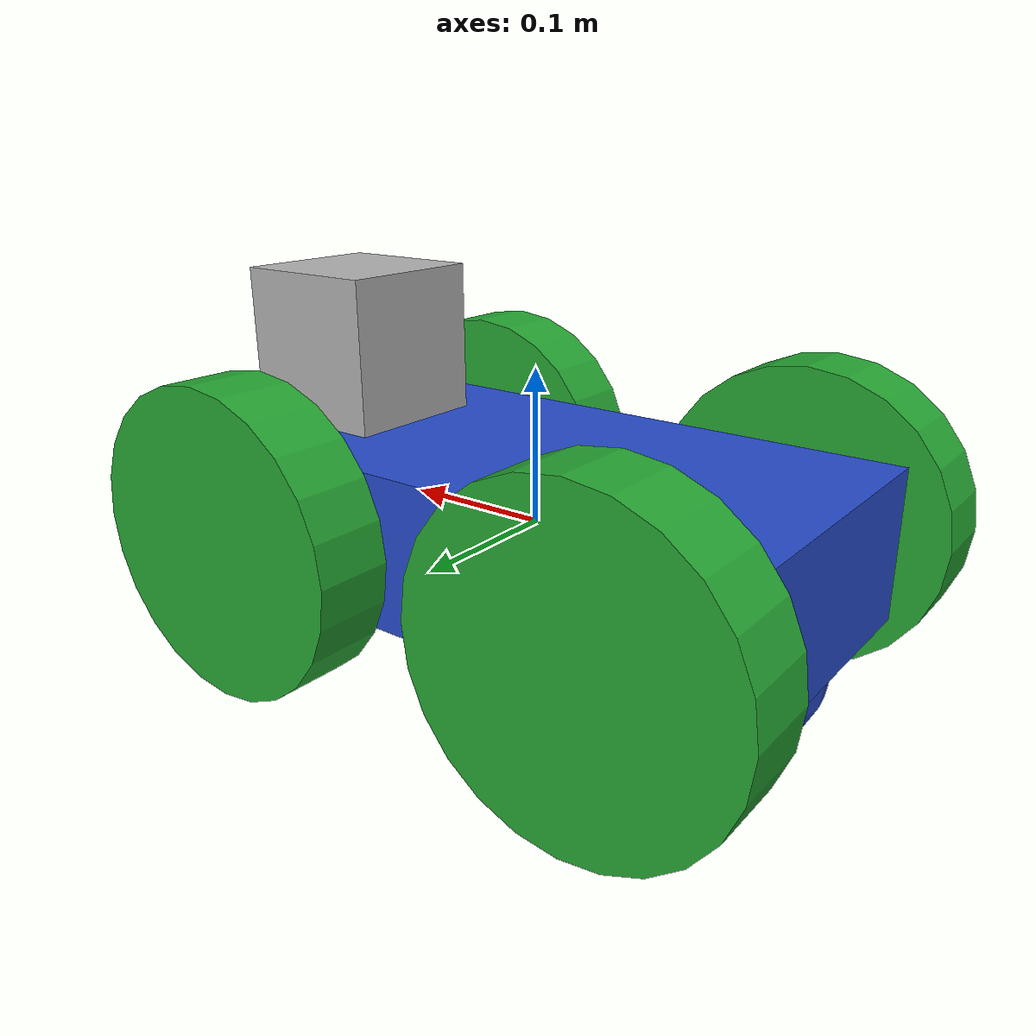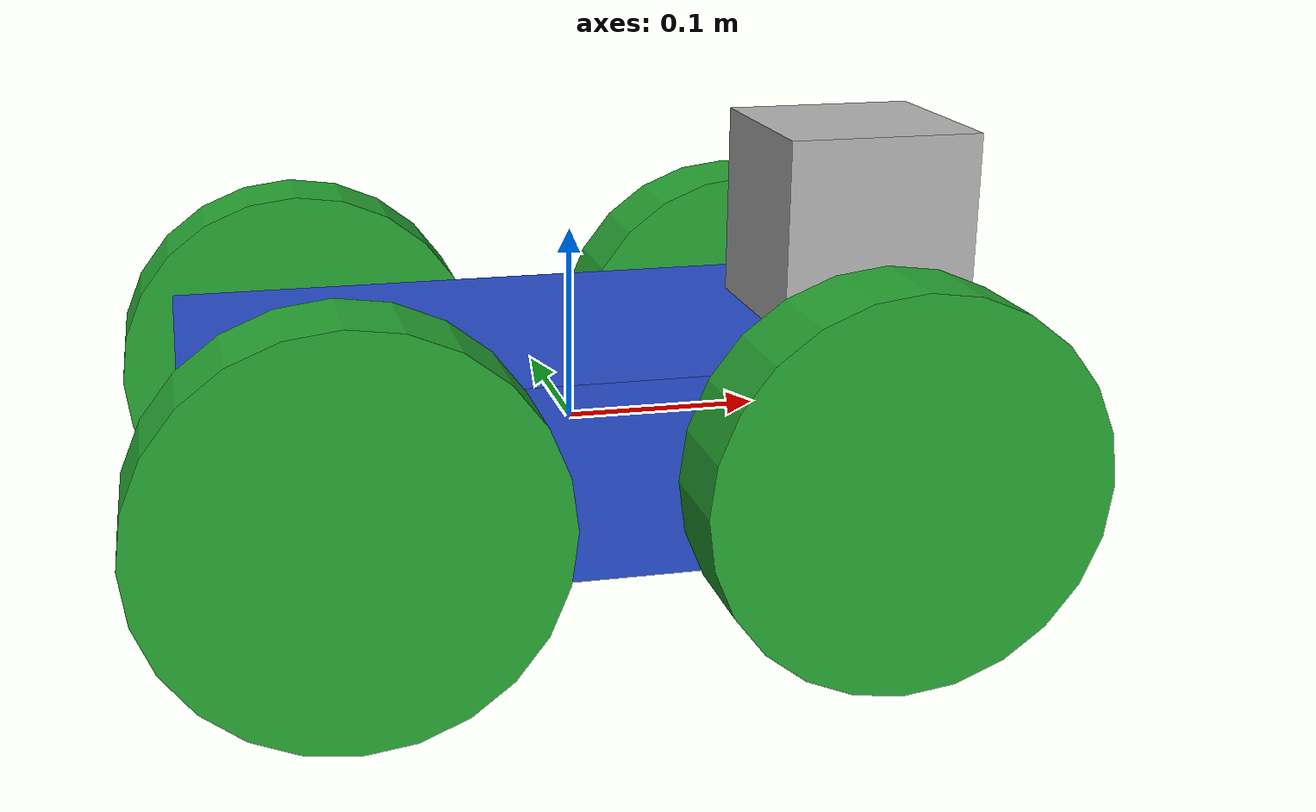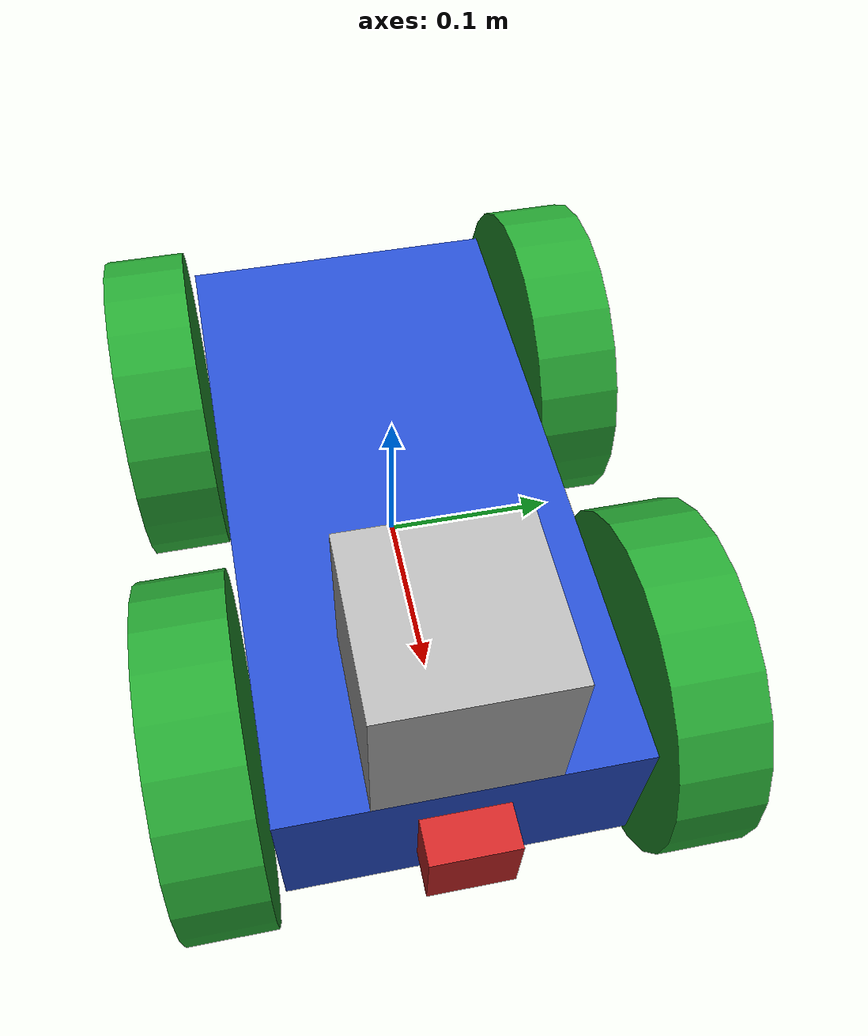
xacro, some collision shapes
<?xml version='1.0'?>

<robot name="my_robot" xmlns:xacro="http://www.ros.org/wiki/xacro">

  <xacro:include filename="$(find my_robot)/urdf/my_robot.gazebo" />

  <gazebo reference="chassis">
    <material>Gazebo/Blue</material>
  </gazebo>
  <gazebo reference="right_wheel_back">
    <material>Gazebo/Green</material>
  </gazebo>
  <gazebo reference="right_wheel_front">
    <material>Gazebo/Green</material>
  </gazebo>
  <gazebo reference="left_wheel_back">
    <material>Gazebo/Green</material>
  </gazebo>
  <gazebo reference="left_wheel_front">
    <material>Gazebo/Green</material>
  </gazebo>
  <gazebo reference="camera">
    <material>Gazebo/Red</material>
  </gazebo>

  <link name="robot_footprint"></link>

  <joint name="robot_footprint_joint" type="fixed">
    <origin xyz="0 0 0" rpy="0 0 0" />
    <parent link="robot_footprint"/>
    <child link="chassis" />
  </joint>

  <link name='chassis'>
    <pose>0 0 0.1 0 0 0</pose>

    <inertial>
      <mass value="15.0"/>
      <origin xyz="0.0 0 0" rpy=" 0 0 0"/>
      <inertia
          ixx="0.1" ixy="0" ixz="0"
          iyy="0.1" iyz="0"
          izz="0.1"
      />
    </inertial>

    <collision name='collision'>
      <origin xyz="0 0 0" rpy=" 0 0 0"/>
      <geometry>
        <box size=".4 .2 .1"/>
      </geometry>
    </collision>

    <visual name='chassis_visual'>
      <origin xyz="0 0 0" rpy=" 0 0 0"/>
      <geometry>
        <box size=".4 .2 .1"/>
      </geometry>
    </visual>

    <collision name='back_caster_collision'>
      <origin xyz="-0.15 0 -0.05" rpy=" 0 0 0"/>
      <geometry>
        <sphere radius="0.0499"/>
      </geometry>
    </collision>

    <visual name='back_caster_visual'>
      <origin xyz="-0.15 0 -0.05" rpy=" 0 0 0"/>
      <geometry>
        <sphere radius="0.05"/>
      </geometry>
    </visual>

    <collision name='front_caster_collision'>
      <origin xyz="0.15 0 -0.05" rpy=" 0 0 0"/>
      <geometry>
        <sphere radius="0.0499"/>
      </geometry>
    </collision>

    <visual name='front_caster_visual'>
      <origin xyz="0.15 0 -0.05" rpy=" 0 0 0"/>
      <geometry>
        <sphere radius="0.05"/>
      </geometry>
    </visual>

  </link>

  <link name='left_wheel_back'>
    <inertial>
      <mass value="5.0"/>
       <origin xyz="0 0 0" rpy=" 0 1.5707 1.5707"/>
      <inertia
          ixx="0.1" ixy="0" ixz="0"
          iyy="0.1" iyz="0"
          izz="0.1"
      />
    </inertial>

    <collision name='left_wheel_back_collision'>
      <origin xyz="0 0 0" rpy=" 0 1.5707 1.5707"/>
      <geometry>
        <cylinder radius="0.1" length="0.05"/>
      </geometry>
    </collision>

    <visual name='left_wheel_back_visual'>
      <origin xyz="0 0 0" rpy=" 0 1.5707 1.5707"/>
      <geometry>
        <cylinder radius="0.1" length="0.05"/>
      </geometry>
    </visual>
  </link>

  <joint type="continuous" name="left_wheel_back_hinge">
    <origin xyz="-0.13 0.13 0" rpy="0 0 0"/>
    <child link="left_wheel_back"/>
    <parent link="chassis"/>
    <axis xyz="0 1 0" rpy="0 0 0"/>
    <limit effort="10000" velocity="1000"/>
    <dynamics damping="1.0" friction="1.0"/>
  </joint>

  <link name='left_wheel_front'>
    <inertial>
      <mass value="5.0"/>
       <origin xyz="0 0 0" rpy=" 0 1.5707 1.5707"/>
      <inertia
          ixx="0.1" ixy="0" ixz="0"
          iyy="0.1" iyz="0"
          izz="0.1"
      />
    </inertial>

    <collision name='left_wheel_front_collision'>
      <origin xyz="0 0 0" rpy=" 0 1.5707 1.5707"/>
      <geometry>
        <cylinder radius="0.1" length="0.05"/>
      </geometry>
    </collision>

    <visual name='left_wheel_front_visual'>
      <origin xyz="0 0 0" rpy=" 0 1.5707 1.5707"/>
      <geometry>
        <cylinder radius="0.1" length="0.05"/>
      </geometry>
    </visual>
  </link>

  <joint type="continuous" name="left_wheel_front_hinge">
    <origin xyz="0.13 0.13 0" rpy="0 0 0"/>
    <child link="left_wheel_front"/>
    <parent link="chassis"/>
    <axis xyz="0 1 0" rpy="0 0 0"/>
    <limit effort="10000" velocity="1000"/>
    <dynamics damping="1.0" friction="1.0"/>
  </joint>

  <link name='right_wheel_back'>
    <inertial>
      <mass value="5.0"/>
       <origin xyz="0 0 0" rpy=" 0 1.5707 1.5707"/>
      <inertia
          ixx="0.1" ixy="0" ixz="0"
          iyy="0.1" iyz="0"
          izz="0.1"
      />
    </inertial>

    <collision name='right_wheel_back_collision'>
      <origin xyz="0 0 0" rpy=" 0 1.5707 1.5707"/>
      <geometry>
        <cylinder radius="0.1" length="0.05"/>
      </geometry>
    </collision>

    <visual name='right_wheel_back_visual'>
      <origin xyz="0 0 0" rpy=" 0 1.5707 1.5707"/>
      <geometry>
        <cylinder radius="0.1" length="0.05"/>
      </geometry>
    </visual>
  </link>

  <joint type="continuous" name="right_wheel_back_hinge">
    <origin xyz="-0.13 -0.13 0" rpy="0 0 0"/>
    <child link="right_wheel_back"/>
    <parent link="chassis"/>
    <axis xyz="0 1 0" rpy="0 0 0"/>
    <limit effort="10000" velocity="1000"/>
    <dynamics damping="1.0" friction="1.0"/>
  </joint>

  <link name='right_wheel_front'>
    <inertial>
      <mass value="5.0"/>
       <origin xyz="0 0 0" rpy=" 0 1.5707 1.5707"/>
      <inertia
          ixx="0.1" ixy="0" ixz="0"
          iyy="0.1" iyz="0"
          izz="0.1"
      />
    </inertial>

    <collision name='right_wheel_front_collision'>
      <origin xyz="0 0 0" rpy=" 0 1.5707 1.5707"/>
      <geometry>
        <cylinder radius="0.1" length="0.05"/>
      </geometry>
    </collision>

    <visual name='right_wheel_front_visual'>
      <origin xyz="0 0 0" rpy=" 0 1.5707 1.5707"/>
      <geometry>
        <cylinder radius="0.1" length="0.05"/>
      </geometry>
    </visual>
  </link>

  <joint type="continuous" name="right_wheel_front_hinge">
    <origin xyz="0.13 -0.13 0" rpy="0 0 0"/>
    <child link="right_wheel_front"/>
    <parent link="chassis"/>
    <axis xyz="0 1 0" rpy="0 0 0"/>
    <limit effort="10000" velocity="1000"/>
    <dynamics damping="1.0" friction="1.0"/>
  </joint>

  <link name='camera'>
    <inertial>
      <mass value="0.1"/>
       <origin xyz="0 0 0" rpy=" 0 0 0"/>
      <inertia
          ixx="1e-6" ixy="0" ixz="0"
          iyy="1e-6" iyz="0"
          izz="1e-6"
      />
    </inertial>

    <collision name='camera_collision'>
      <origin xyz="0 0 0" rpy=" 0 0 0"/>
      <geometry>
        <box size="0.05 0.05 0.05"/>
      </geometry>
    </collision>

    <visual name='camera_visual'>
      <origin xyz="0 0 0" rpy=" 0 0 0"/>
      <geometry>
        <box size="0.05 0.05 0.05"/>
      </geometry>
    </visual>
  </link>

  <joint name="camera_joint" type="fixed">
    <origin xyz="0.2 0 0" rpy="0 0 0" />
    <parent link="chassis"/>
    <child link="camera" />
    <axis xyz="0 1 0" rpy="0 0 0"/>
  </joint>

  <link name='hokuyo'>
    <inertial>
      <mass value="1e-5"/>
       <origin xyz="0 0 0" rpy=" 0 0 0"/>
      <inertia
          ixx="1e-6" ixy="0" ixz="0"
          iyy="1e-6" iyz="0"
          izz="1e-6"
      />
    </inertial>

    <collision name='hokuyo_collision'>
      <origin xyz="0 0 0" rpy=" 0 0 0"/>
      <geometry>
        <box size="0.1 0.1 0.1"/>
      </geometry>
    </collision>

    <visual name='hokuyo_visual'>
      <origin xyz="0 0 0" rpy=" 0 0 0"/>
      <geometry>
        <mesh filename="package://my_robot/meshes/hokuyo.dae"/>
      </geometry>
    </visual>
  </link>

  <joint name="hokuyo_joint" type="fixed">
    <origin xyz="0.15 0 0.1" rpy="0 0 0" />
    <parent link="chassis"/>
    <child link="hokuyo" />
    <axis xyz="0 1 0" rpy="0 0 0"/>
  </joint>

</robot>
